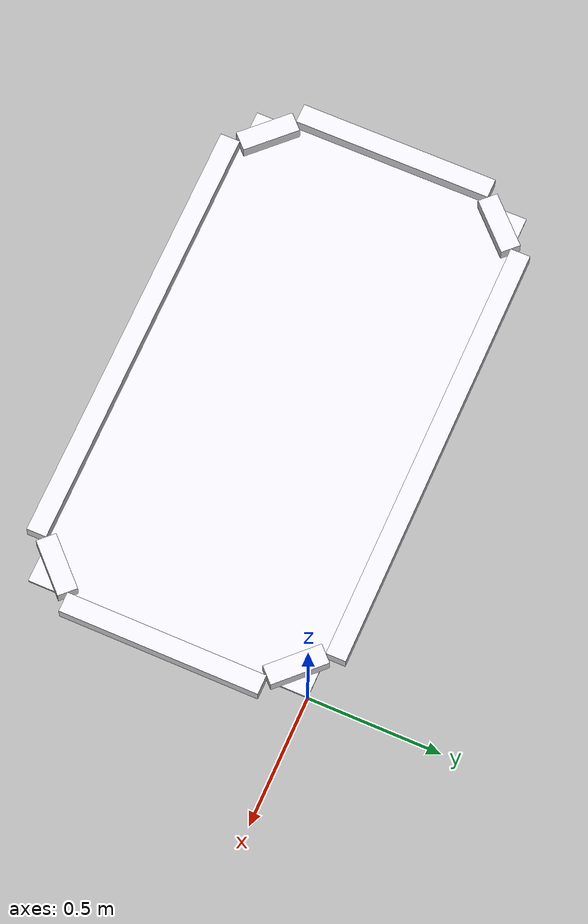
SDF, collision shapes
<?xml version="1.0"?>
<sdf version="1.8">
  <model name="air_hockey_table">
    <static>true</static>

    <link name="table_link">

      <collision name="countertop_collision">
        <pose>-0.99 -0.5325 0.005 0 0 0</pose>
        <geometry>
          <box><size>1.98 1.065 0.01</size></box>
        </geometry>
        <surface>
          <friction>
            <ode><mu>0.01</mu><mu2>0.01</mu2></ode>
          </friction>
          <bounce>
            <restitution_coefficient>0.0</restitution_coefficient>
            <threshold>0.01</threshold>
          </bounce>
        </surface>
      </collision>
      <visual name="countertop_visual">
        <geometry>
          <mesh><uri>meshes/countertop.obj</uri></mesh>
        </geometry>
        <material>
          <ambient>0.9 0.9 0.92 1</ambient>
          <diffuse>0.9 0.9 0.92 1</diffuse>
          <specular>0.3 0.3 0.3 1</specular>
        </material>
      </visual>

      <!-- Cushion ring (banda), offset outward from the play-area edge. Visual only - see the
           primitive collision shapes below for why. -->
      <visual name="band_visual">
        <geometry>
          <mesh><uri>meshes/band.obj</uri></mesh>
        </geometry>
        <material>
          <ambient>0.05 0.05 0.05 1</ambient>
          <diffuse>0.05 0.05 0.05 1</diffuse>
          <specular>0.1 0.1 0.1 1</specular>
        </material>
      </visual>

      <collision name="wall_top_collision">
        <pose>-0.99 0.0375 0.0375 0 0 0</pose>
        <geometry><box><size>1.67 0.075 0.055</size></box></geometry>
        <surface>
          <friction><ode><mu>0.01</mu><mu2>0.01</mu2></ode></friction>
          <bounce><restitution_coefficient>0.8</restitution_coefficient><threshold>0.01</threshold></bounce>
        </surface>
      </collision>
      <collision name="wall_bottom_collision">
        <pose>-0.99 -1.1025 0.0375 0 0 0</pose>
        <geometry><box><size>1.67 0.075 0.055</size></box></geometry>
        <surface>
          <friction><ode><mu>0.01</mu><mu2>0.01</mu2></ode></friction>
          <bounce><restitution_coefficient>0.8</restitution_coefficient><threshold>0.01</threshold></bounce>
        </surface>
      </collision>
      <collision name="wall_left_collision">
        <pose>-2.0175 -0.5325 0.0375 0 0 0</pose>
        <geometry><box><size>0.075 0.755 0.055</size></box></geometry>
        <surface>
          <friction><ode><mu>0.01</mu><mu2>0.01</mu2></ode></friction>
          <bounce><restitution_coefficient>0.8</restitution_coefficient><threshold>0.01</threshold></bounce>
        </surface>
      </collision>
      <collision name="wall_right_collision">
        <pose>0.0375 -0.5325 0.0375 0 0 0</pose>
        <geometry><box><size>0.075 0.755 0.055</size></box></geometry>
        <surface>
          <friction><ode><mu>0.01</mu><mu2>0.01</mu2></ode></friction>
          <bounce><restitution_coefficient>0.8</restitution_coefficient><threshold>0.01</threshold></bounce>
        </surface>
      </collision>
      <collision name="corner_00_collision">
        <pose>-0.0775 -0.0775 0.0375 0 0 -0.7854</pose>
        <geometry><box><size>0.2192 0.075 0.055</size></box></geometry>
        <surface>
          <friction><ode><mu>0.01</mu><mu2>0.01</mu2></ode></friction>
          <bounce><restitution_coefficient>0.8</restitution_coefficient><threshold>0.01</threshold></bounce>
        </surface>
      </collision>
      <collision name="corner_w0_collision">
        <pose>-1.9025 -0.0775 0.0375 0 0 -2.3562</pose>
        <geometry><box><size>0.2192 0.075 0.055</size></box></geometry>
        <surface>
          <friction><ode><mu>0.01</mu><mu2>0.01</mu2></ode></friction>
          <bounce><restitution_coefficient>0.8</restitution_coefficient><threshold>0.01</threshold></bounce>
        </surface>
      </collision>
      <collision name="corner_0h_collision">
        <pose>-0.0775 -0.9875 0.0375 0 0 0.7854</pose>
        <geometry><box><size>0.2192 0.075 0.055</size></box></geometry>
        <surface>
          <friction><ode><mu>0.01</mu><mu2>0.01</mu2></ode></friction>
          <bounce><restitution_coefficient>0.8</restitution_coefficient><threshold>0.01</threshold></bounce>
        </surface>
      </collision>
      <collision name="corner_wh_collision">
        <pose>-1.9025 -0.9875 0.0375 0 0 2.3562</pose>
        <geometry><box><size>0.2192 0.075 0.055</size></box></geometry>
        <surface>
          <friction><ode><mu>0.01</mu><mu2>0.01</mu2></ode></friction>
          <bounce><restitution_coefficient>0.8</restitution_coefficient><threshold>0.01</threshold></bounce>
        </surface>
      </collision>

      <visual name="marker_15">
        <pose>-1.7875 -1.1025 0.067 0 0 0</pose>
        <geometry><mesh><uri>meshes/marker_tile_15.obj</uri></mesh></geometry>
        <material><ambient>1 1 1 1</ambient><diffuse>1 1 1 1</diffuse><specular>1 1 1 1</specular><pbr><metal><albedo_map>materials/textures/april_16h5-15-1.png</albedo_map><roughness>1.0</roughness><metalness>0.0</metalness></metal></pbr></material>
      </visual>
      <visual name="marker_14">
        <pose>-0.1925 -1.1025 0.067 0 0 0</pose>
        <geometry><mesh><uri>meshes/marker_tile_14.obj</uri></mesh></geometry>
        <material><ambient>1 1 1 1</ambient><diffuse>1 1 1 1</diffuse><specular>1 1 1 1</specular><pbr><metal><albedo_map>materials/textures/april_16h5-14-1.png</albedo_map><roughness>1.0</roughness><metalness>0.0</metalness></metal></pbr></material>
      </visual>
      <visual name="marker_13">
        <pose>0.0375 -0.8725 0.067 0 0 0</pose>
        <geometry><mesh><uri>meshes/marker_tile_13.obj</uri></mesh></geometry>
        <material><ambient>1 1 1 1</ambient><diffuse>1 1 1 1</diffuse><specular>1 1 1 1</specular><pbr><metal><albedo_map>materials/textures/april_16h5-13-1.png</albedo_map><roughness>1.0</roughness><metalness>0.0</metalness></metal></pbr></material>
      </visual>
      <visual name="marker_12">
        <pose>0.0375 -0.1925 0.067 0 0 0</pose>
        <geometry><mesh><uri>meshes/marker_tile_12.obj</uri></mesh></geometry>
        <material><ambient>1 1 1 1</ambient><diffuse>1 1 1 1</diffuse><specular>1 1 1 1</specular><pbr><metal><albedo_map>materials/textures/april_16h5-12-1.png</albedo_map><roughness>1.0</roughness><metalness>0.0</metalness></metal></pbr></material>
      </visual>
      <visual name="marker_11">
        <pose>-0.1925 0.0375 0.067 0 0 0</pose>
        <geometry><mesh><uri>meshes/marker_tile_11.obj</uri></mesh></geometry>
        <material><ambient>1 1 1 1</ambient><diffuse>1 1 1 1</diffuse><specular>1 1 1 1</specular><pbr><metal><albedo_map>materials/textures/april_16h5-11-1.png</albedo_map><roughness>1.0</roughness><metalness>0.0</metalness></metal></pbr></material>
      </visual>
      <visual name="marker_10">
        <pose>-1.7875 0.0375 0.067 0 0 0</pose>
        <geometry><mesh><uri>meshes/marker_tile_10.obj</uri></mesh></geometry>
        <material><ambient>1 1 1 1</ambient><diffuse>1 1 1 1</diffuse><specular>1 1 1 1</specular><pbr><metal><albedo_map>materials/textures/april_16h5-10-1.png</albedo_map><roughness>1.0</roughness><metalness>0.0</metalness></metal></pbr></material>
      </visual>
      <visual name="marker_16">
        <pose>-2.0175 -0.1925 0.067 0 0 0</pose>
        <geometry><mesh><uri>meshes/marker_tile_16.obj</uri></mesh></geometry>
        <material><ambient>1 1 1 1</ambient><diffuse>1 1 1 1</diffuse><specular>1 1 1 1</specular><pbr><metal><albedo_map>materials/textures/april_16h5-16-1.png</albedo_map><roughness>1.0</roughness><metalness>0.0</metalness></metal></pbr></material>
      </visual>
      <visual name="marker_17">
        <pose>-2.0175 -0.8725 0.067 0 0 0</pose>
        <geometry><mesh><uri>meshes/marker_tile_17.obj</uri></mesh></geometry>
        <material><ambient>1 1 1 1</ambient><diffuse>1 1 1 1</diffuse><specular>1 1 1 1</specular><pbr><metal><albedo_map>materials/textures/april_16h5-17-1.png</albedo_map><roughness>1.0</roughness><metalness>0.0</metalness></metal></pbr></material>
      </visual>

    </link>
  </model>
</sdf>
